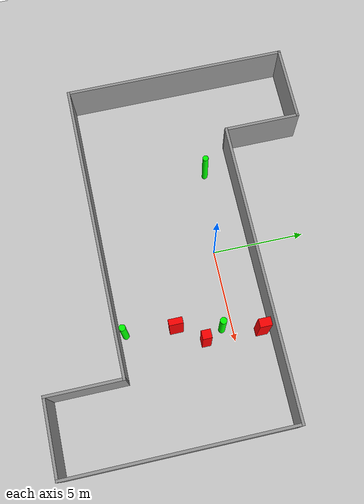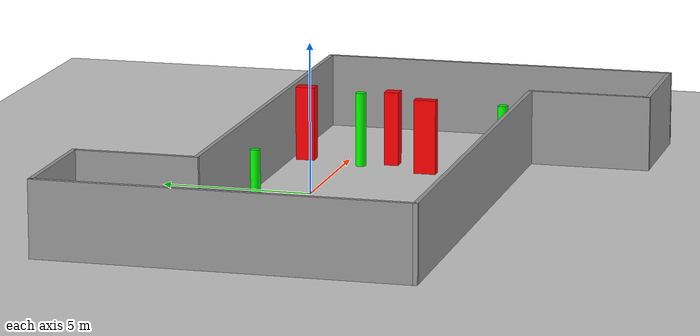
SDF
<sdf version="1.7">
 <world name="default">
  <light name="sun" type="directional">
   <pose>0 0 10 0 -0 0</pose>
   <diffuse>0.8 0.8 0.8 1</diffuse>
   <specular>0.2 0.2 0.2 1</specular>
   <attenuation>
    <range>1000</range>
    <constant>0.9</constant>
    <linear>0.01</linear>
    <quadratic>0.001</quadratic>
   </attenuation>
   <direction>-0.5 0.1 -0.9</direction>
   <spot><inner_angle>0</inner_angle><outer_angle>0</outer_angle><falloff>0</falloff></spot>
  </light>
  <model name="ground_plane">
   <static>1</static>
   <link name="link">
    <collision name="collision">
     <geometry><plane><normal>0 0 1</normal><size>100 100</size></plane></geometry>
     <surface>
      <contact><collide_bitmask>65535</collide_bitmask></contact>
      <friction><ode><mu>100</mu><mu2>50</mu2></ode></friction>
     </surface>
    </collision>
    <visual name="visual">
     <cast_shadows>0</cast_shadows>
     <geometry><plane><normal>0 0 1</normal><size>100 100</size></plane></geometry>
     <material>
      <script><uri>file://media/materials/scripts/gazebo.material</uri><name>Gazebo/Grey</name></script>
     </material>
    </visual>
   </link>
  </model>
  <gravity>0 0 -9.8</gravity>
  <magnetic_field>6e-06 2.3e-05 -4.2e-05</magnetic_field>
  <atmosphere type="adiabatic"/>
  <physics type="ode">
   <max_step_size>0.001</max_step_size>
   <real_time_factor>1</real_time_factor>
   <real_time_update_rate>1000</real_time_update_rate>
  </physics>
  <scene><ambient>0.4 0.4 0.4 1</ambient><background>0.7 0.7 0.7 1</background><shadows>1</shadows></scene>
  <spherical_coordinates>
   <surface_model>EARTH_WGS84</surface_model>
   <latitude_deg>0</latitude_deg>
   <longitude_deg>0</longitude_deg>
   <elevation>0</elevation>
   <heading_deg>0</heading_deg>
  </spherical_coordinates>
  <model name="my_base_walls">
   <link name="Wall_13">
    <collision name="Wall_13_Collision">
     <geometry><box><size>12.15 0.15 2.5</size></box></geometry>
     <pose>0 0 1.25 0 -0 0</pose>
    </collision>
    <visual name="Wall_13_Visual">
     <pose>0 0 1.25 0 -0 0</pose>
     <geometry><box><size>12.15 0.15 2.5</size></box></geometry>
     <material>
      <script><uri>file://media/materials/scripts/gazebo.material</uri><name>Gazebo/Grey</name></script>
      <ambient>1 1 1 1</ambient>
     </material>
     <meta><layer>0</layer></meta>
    </visual>
    <pose>10 -2 0 0 -0 1.5708</pose>
   </link>
   <link name="Wall_15">
    <collision name="Wall_15_Collision">
     <geometry><box><size>16.15 0.15 2.5</size></box></geometry>
     <pose>0 0 1.25 0 -0 0</pose>
    </collision>
    <visual name="Wall_15_Visual">
     <pose>0 0 1.25 0 -0 0</pose>
     <geometry><box><size>16.15 0.15 2.5</size></box></geometry>
     <material>
      <script><uri>file://media/materials/scripts/gazebo.material</uri><name>Gazebo/Grey</name></script>
      <ambient>1 1 1 1</ambient>
     </material>
     <meta><layer>0</layer></meta>
    </visual>
    <pose>2 4 0 0 -0 3.14159</pose>
   </link>
   <link name="Wall_17">
    <collision name="Wall_17_Collision">
     <geometry><box><size>4.15 0.15 2.5</size></box></geometry>
     <pose>0 0 1.25 0 -0 0</pose>
    </collision>
    <visual name="Wall_17_Visual">
     <pose>0 0 1.25 0 -0 0</pose>
     <geometry><box><size>4.15 0.15 2.5</size></box></geometry>
     <material>
      <script><uri>file://media/materials/scripts/gazebo.material</uri><name>Gazebo/Grey</name></script>
      <ambient>1 1 1 1</ambient>
     </material>
     <meta><layer>0</layer></meta>
    </visual>
    <pose>6 -6 0 0 -0 -1.5708</pose>
   </link>
   <link name="Wall_19">
    <collision name="Wall_19_Collision">
     <geometry><box><size>12.15 0.15 2.5</size></box></geometry>
     <pose>0 0 1.25 0 -0 0</pose>
    </collision>
    <visual name="Wall_19_Visual">
     <pose>0 0 1.25 0 -0 0</pose>
     <geometry><box><size>12.15 0.15 2.5</size></box></geometry>
     <material>
      <script><uri>file://media/materials/scripts/gazebo.material</uri><name>Gazebo/Grey</name></script>
      <ambient>1 1 1 1</ambient>
     </material>
     <meta><layer>0</layer></meta>
    </visual>
    <pose>-10 2 0 0 -0 1.5708</pose>
   </link>
   <link name="Wall_21">
    <collision name="Wall_21_Collision">
     <geometry><box><size>4.15 0.15 2.5</size></box></geometry>
     <pose>0 0 1.25 0 -0 0</pose>
    </collision>
    <visual name="Wall_21_Visual">
     <pose>0 0 1.25 0 -0 0</pose>
     <geometry><box><size>4.15 0.15 2.5</size></box></geometry>
     <material>
      <script><uri>file://media/materials/scripts/gazebo.material</uri><name>Gazebo/Grey</name></script>
      <ambient>1 1 1 1</ambient>
     </material>
     <meta><layer>0</layer></meta>
    </visual>
    <pose>-8 8 0 0 -0 0</pose>
   </link>
   <link name="Wall_23">
    <collision name="Wall_23_Collision">
     <geometry><box><size>4.15 0.15 2.5</size></box></geometry>
     <pose>0 0 1.25 0 -0 0</pose>
    </collision>
    <visual name="Wall_23_Visual">
     <pose>0 0 1.25 0 -0 0</pose>
     <geometry><box><size>4.15 0.15 2.5</size></box></geometry>
     <material>
      <script><uri>file://media/materials/scripts/gazebo.material</uri><name>Gazebo/Grey</name></script>
      <ambient>1 1 1 1</ambient>
     </material>
     <meta><layer>0</layer></meta>
    </visual>
    <pose>-6 6 0 0 -0 -1.5708</pose>
   </link>
   <link name="Wall_25">
    <collision name="Wall_25_Collision">
     <geometry><box><size>4.15 0.15 2.5</size></box></geometry>
     <pose>0 0 1.25 0 -0 0</pose>
    </collision>
    <visual name="Wall_25_Visual">
     <pose>0 0 1.25 0 -0 0</pose>
     <geometry><box><size>4.15 0.15 2.5</size></box></geometry>
     <material>
      <script><uri>file://media/materials/scripts/gazebo.material</uri><name>Gazebo/Grey</name></script>
      <ambient>1 1 1 1</ambient>
     </material>
     <meta><layer>0</layer></meta>
    </visual>
    <pose>8 -8 0 0 -0 0</pose>
   </link>
   <link name="Wall_9">
    <collision name="Wall_9_Collision">
     <geometry><box><size>16.15 0.15 2.5</size></box></geometry>
     <pose>0 0 1.25 0 -0 0</pose>
    </collision>
    <visual name="Wall_9_Visual">
     <pose>0 0 1.25 0 -0 0</pose>
     <geometry><box><size>16.15 0.15 2.5</size></box></geometry>
     <material>
      <script><uri>file://media/materials/scripts/gazebo.material</uri><name>Gazebo/Grey</name></script>
      <ambient>1 1 1 1</ambient>
     </material>
     <meta><layer>0</layer></meta>
    </visual>
    <pose>-2 -4 0 0 -0 3.14159</pose>
   </link>
   <static>1</static>
   <pose>-0 -2 0 0 -0 0</pose>
  </model>
  <model name="cylinder1">
   <static>1</static>
   <link name="link">
    <inertial>
     <mass>1</mass>
     <inertia><ixx>0.5</ixx><ixy>0</ixy><ixz>0</ixz><iyy>0.5</iyy><iyz>0</iyz><izz>1</izz></inertia>
    </inertial>
    <collision name="collision">
     <geometry><cylinder><radius>0.17262388954255636</radius><length>2.5</length></cylinder></geometry>
    </collision>
    <visual name="visual">
     <geometry><cylinder><radius>0.17262388954255636</radius><length>2.5</length></cylinder></geometry>
     <material>
      <ambient>0 1 0 1</ambient>
      <diffuse>0 1 0 1</diffuse>
      <specular>0.1 0.1 0.1 1</specular>
      <emissive>0 0 0 0</emissive>
     </material>
    </visual>
   </link>
   <pose>3.4983856253934746 -5.6123792661054575 1.25 0 0 0</pose>
  </model>
  <model name="cylinder2">
   <static>1</static>
   <link name="link">
    <inertial>
     <mass>1</mass>
     <inertia><ixx>0.5</ixx><ixy>0</ixy><ixz>0</ixz><iyy>0.5</iyy><iyz>0</iyz><izz>1</izz></inertia>
    </inertial>
    <collision name="collision">
     <geometry><cylinder><radius>0.15731317244993023</radius><length>2.5</length></cylinder></geometry>
    </collision>
    <visual name="visual">
     <geometry><cylinder><radius>0.15731317244993023</radius><length>2.5</length></cylinder></geometry>
     <material>
      <ambient>0 1 0 1</ambient>
      <diffuse>0 1 0 1</diffuse>
      <specular>0.1 0.1 0.1 1</specular>
      <emissive>0 0 0 0</emissive>
     </material>
    </visual>
   </link>
   <pose>-4.560253533955784 0.5174801374461326 1.25 0 0 0</pose>
  </model>
  <model name="cylinder3">
   <static>1</static>
   <link name="link">
    <inertial>
     <mass>1</mass>
     <inertia><ixx>0.5</ixx><ixy>0</ixy><ixz>0</ixz><iyy>0.5</iyy><iyz>0</iyz><izz>1</izz></inertia>
    </inertial>
    <collision name="collision">
     <geometry><cylinder><radius>0.1782296853000736</radius><length>2.5</length></cylinder></geometry>
    </collision>
    <visual name="visual">
     <geometry><cylinder><radius>0.1782296853000736</radius><length>2.5</length></cylinder></geometry>
     <material>
      <ambient>0 1 0 1</ambient>
      <diffuse>0 1 0 1</diffuse>
      <specular>0.1 0.1 0.1 1</specular>
      <emissive>0 0 0 0</emissive>
     </material>
    </visual>
   </link>
   <pose>4.249552431935832 -0.5737629965957005 1.25 0 0 0</pose>
  </model>
  <model name="box1">
   <static>1</static>
   <link name="link">
    <inertial>
     <mass>1</mass>
     <inertia><ixx>0.083</ixx><ixy>0</ixy><ixz>0</ixz><iyy>0.083</iyy><iyz>0</iyz><izz>0.083</izz></inertia>
    </inertial>
    <collision name="collision">
     <geometry><box><size>0.46279299094582077 0.4879251966686599 2.5</size></box></geometry>
    </collision>
    <visual name="visual">
     <geometry><box><size>0.46279299094582077 0.4879251966686599 2.5</size></box></geometry>
     <material>
      <ambient>1 0 0 1</ambient>
      <diffuse>1 0 0 1</diffuse>
      <specular>0.1 0.1 0.1 1</specular>
      <emissive>0 0 0 0</emissive>
     </material>
    </visual>
    <sensor name="my_contact" type="contact">
     <contact><collision>box_collision</collision><topic>__default_topic__</topic></contact>
    </sensor>
   </link>
   <pose>4.7312038343260365 -1.5573276143616237 1.25 0 0 0</pose>
  </model>
  <model name="box2">
   <static>1</static>
   <link name="link">
    <inertial>
     <mass>1</mass>
     <inertia><ixx>0.083</ixx><ixy>0</ixy><ixz>0</ixz><iyy>0.083</iyy><iyz>0</iyz><izz>0.083</izz></inertia>
    </inertial>
    <collision name="collision">
     <geometry><box><size>0.45052567459514237 0.6420158654149823 2.5</size></box></geometry>
    </collision>
    <visual name="visual">
     <geometry><box><size>0.45052567459514237 0.6420158654149823 2.5</size></box></geometry>
     <material>
      <ambient>1 0 0 1</ambient>
      <diffuse>1 0 0 1</diffuse>
      <specular>0.1 0.1 0.1 1</specular>
      <emissive>0 0 0 0</emissive>
     </material>
    </visual>
    <sensor name="my_contact" type="contact">
     <contact><collision>box_collision</collision><topic>__default_topic__</topic></contact>
    </sensor>
   </link>
   <pose>4.772777653439105 1.4507352609743167 1.25 0 0 0</pose>
  </model>
  <model name="box3">
   <static>1</static>
   <link name="link">
    <inertial>
     <mass>1</mass>
     <inertia><ixx>0.083</ixx><ixy>0</ixy><ixz>0</ixz><iyy>0.083</iyy><iyz>0</iyz><izz>0.083</izz></inertia>
    </inertial>
    <collision name="collision">
     <geometry><box><size>0.3277659636890943 0.7403145762873475 2.5</size></box></geometry>
    </collision>
    <visual name="visual">
     <geometry><box><size>0.3277659636890943 0.7403145762873475 2.5</size></box></geometry>
     <material>
      <ambient>1 0 0 1</ambient>
      <diffuse>1 0 0 1</diffuse>
      <specular>0.1 0.1 0.1 1</specular>
      <emissive>0 0 0 0</emissive>
     </material>
    </visual>
    <sensor name="my_contact" type="contact">
     <contact><collision>box_collision</collision><topic>__default_topic__</topic></contact>
    </sensor>
   </link>
   <pose>3.755409679653612 -2.934568872610712 1.25 0 0 0</pose>
  </model>
 </world>
</sdf>
